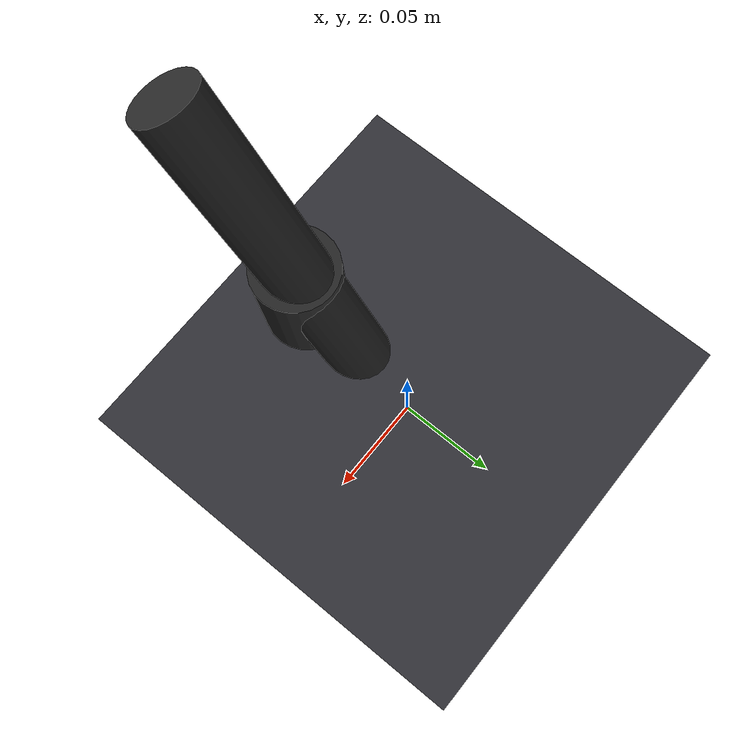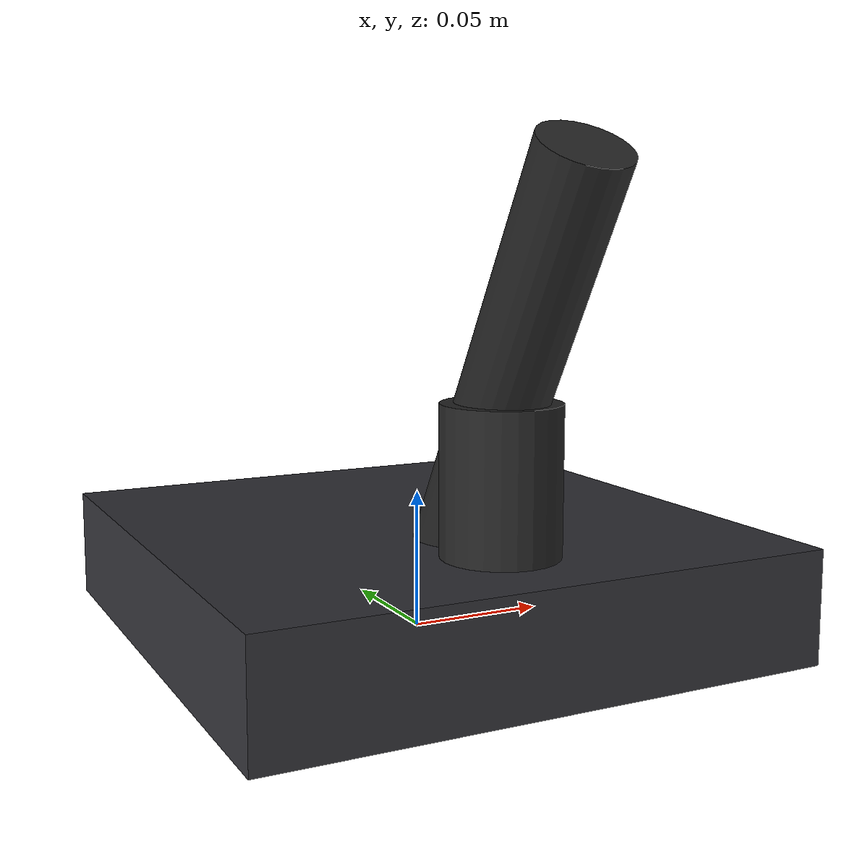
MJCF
<?xml version="1.0" encoding="utf-8"?>
<mujoco model="wafer_inspection_station">
  <compiler angle="radian" autolimits="true"/>
  <default>
    <default class="body"><geom contype="1" conaffinity="1"/></default>
  </default>
  <worldbody>
    <body name="base">
      <geom type="box" size="0.10 0.10 0.02" pos="0 0 0.02" rgba="0.2 0.2 0.22 1" class="body"/>
      <geom type="cylinder" size="0.02 0.03" pos="0 -0.06 0.06" rgba="0.15 0.15 0.15 1" class="body"/>
      <body name="scope_arm" pos="0 -0.06 0.09">
        <joint name="scope_arm_joint" type="hinge" axis="1 0 0" range="-0.8 0.2" damping="0.4" frictionloss="0.3"/>
  <geom type="cylinder" size="0.015 0.09" pos="0 0 0" rgba="0.15 0.15 0.15 1" class="body" quat="0.966 0.259 0 0"/>
      </body>
    </body>
  </worldbody>
</mujoco>
